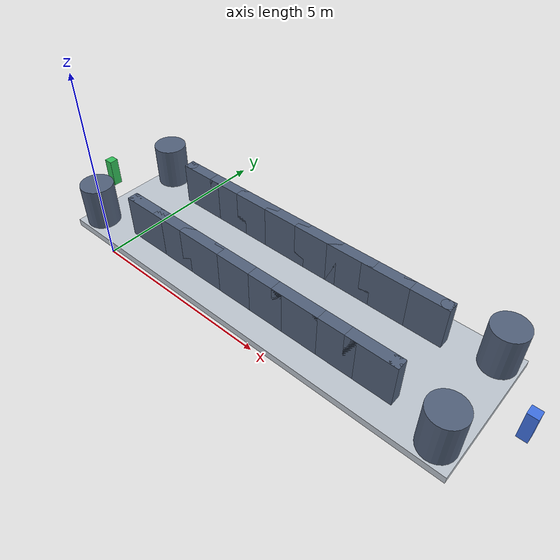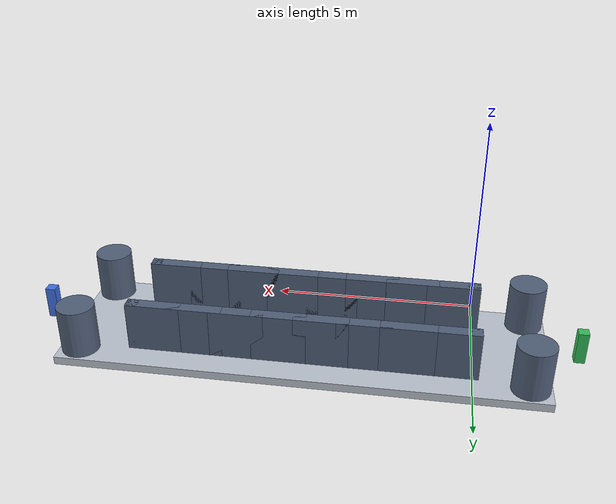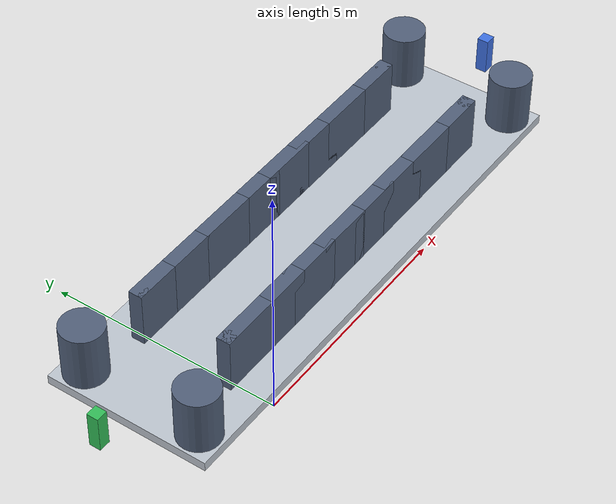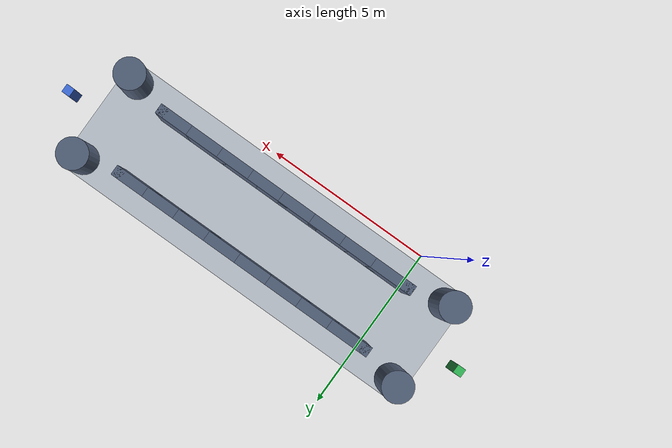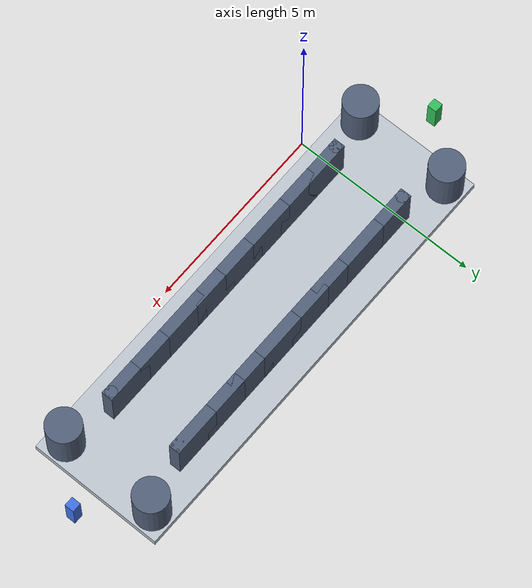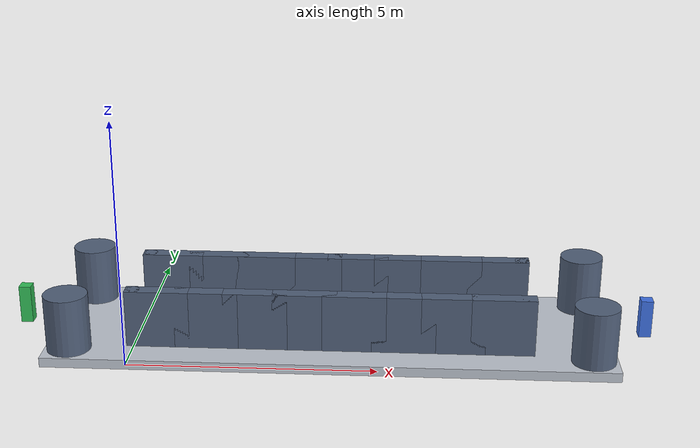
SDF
<?xml version="1.0"?>
<sdf version="1.6">
  <world name="straigh">
    <light type="directional" name="sun">
      <pose>0 0 10 0 0 0</pose>
      <diffuse>0.8 0.8 0.8 1</diffuse>
      <specular>0.2 0.2 0.2 1</specular>
      <direction>-0.5 0.5 -1</direction>
    </light>
    <scene>
      <ambient>0.3 0.3 0.3 1</ambient>
      <background>0.7 0.7 0.7 1</background>
      <shadows>true</shadows>
    </scene>
    <model name="ground_plane">
      <static>true</static>
      <pose>4.000 2.000 -0.1 0 0 0</pose>
      <link name="link">
        <collision name="collision">
          <geometry><box><size>11.60 3.60 0.2</size></box></geometry>
          <surface>
            <friction><ode><mu>1</mu><mu2>1</mu2></ode></friction>
          </surface>
        </collision>
        <visual name="visual">
          <geometry><box><size>11.60 3.60 0.2</size></box></geometry>
          <material>
            <ambient>0.75 0.78 0.82 1</ambient>
            <diffuse>0.75 0.78 0.82 1</diffuse>
          </material>
        </visual>
      </link>
    </model>
    <!-- ============ 迷宫墙体（深蓝灰；box 墙段 + 圆柱圆头） ============ -->
    <model name="wall_00">
      <static>true</static>
      <pose>0.500 3.000 0.600 0 0 0.0000</pose>
      <link name="link">
        <collision name="collision">
          <geometry><box><size>1.300 0.300 1.2</size></box></geometry>
        </collision>
        <visual name="visual">
          <geometry><box><size>1.300 0.300 1.2</size></box></geometry>
          <material><ambient>0.32 0.38 0.48 1</ambient><diffuse>0.32 0.38 0.48 1</diffuse></material>
        </visual>
      </link>
    </model>
    <model name="wall_01">
      <static>true</static>
      <pose>0.500 1.000 0.600 0 0 0.0000</pose>
      <link name="link">
        <collision name="collision">
          <geometry><box><size>1.300 0.300 1.2</size></box></geometry>
        </collision>
        <visual name="visual">
          <geometry><box><size>1.300 0.300 1.2</size></box></geometry>
          <material><ambient>0.32 0.38 0.48 1</ambient><diffuse>0.32 0.38 0.48 1</diffuse></material>
        </visual>
      </link>
    </model>
    <model name="wall_02">
      <static>true</static>
      <pose>1.500 3.000 0.600 0 0 0.0000</pose>
      <link name="link">
        <collision name="collision">
          <geometry><box><size>1.300 0.300 1.2</size></box></geometry>
        </collision>
        <visual name="visual">
          <geometry><box><size>1.300 0.300 1.2</size></box></geometry>
          <material><ambient>0.32 0.38 0.48 1</ambient><diffuse>0.32 0.38 0.48 1</diffuse></material>
        </visual>
      </link>
    </model>
    <model name="wall_03">
      <static>true</static>
      <pose>1.500 1.000 0.600 0 0 0.0000</pose>
      <link name="link">
        <collision name="collision">
          <geometry><box><size>1.300 0.300 1.2</size></box></geometry>
        </collision>
        <visual name="visual">
          <geometry><box><size>1.300 0.300 1.2</size></box></geometry>
          <material><ambient>0.32 0.38 0.48 1</ambient><diffuse>0.32 0.38 0.48 1</diffuse></material>
        </visual>
      </link>
    </model>
    <model name="wall_04">
      <static>true</static>
      <pose>2.500 3.000 0.600 0 0 0.0000</pose>
      <link name="link">
        <collision name="collision">
          <geometry><box><size>1.300 0.300 1.2</size></box></geometry>
        </collision>
        <visual name="visual">
          <geometry><box><size>1.300 0.300 1.2</size></box></geometry>
          <material><ambient>0.32 0.38 0.48 1</ambient><diffuse>0.32 0.38 0.48 1</diffuse></material>
        </visual>
      </link>
    </model>
    <model name="wall_05">
      <static>true</static>
      <pose>2.500 1.000 0.600 0 0 0.0000</pose>
      <link name="link">
        <collision name="collision">
          <geometry><box><size>1.300 0.300 1.2</size></box></geometry>
        </collision>
        <visual name="visual">
          <geometry><box><size>1.300 0.300 1.2</size></box></geometry>
          <material><ambient>0.32 0.38 0.48 1</ambient><diffuse>0.32 0.38 0.48 1</diffuse></material>
        </visual>
      </link>
    </model>
    <model name="wall_06">
      <static>true</static>
      <pose>3.500 3.000 0.600 0 0 0.0000</pose>
      <link name="link">
        <collision name="collision">
          <geometry><box><size>1.300 0.300 1.2</size></box></geometry>
        </collision>
        <visual name="visual">
          <geometry><box><size>1.300 0.300 1.2</size></box></geometry>
          <material><ambient>0.32 0.38 0.48 1</ambient><diffuse>0.32 0.38 0.48 1</diffuse></material>
        </visual>
      </link>
    </model>
    <model name="wall_07">
      <static>true</static>
      <pose>3.500 1.000 0.600 0 0 0.0000</pose>
      <link name="link">
        <collision name="collision">
          <geometry><box><size>1.300 0.300 1.2</size></box></geometry>
        </collision>
        <visual name="visual">
          <geometry><box><size>1.300 0.300 1.2</size></box></geometry>
          <material><ambient>0.32 0.38 0.48 1</ambient><diffuse>0.32 0.38 0.48 1</diffuse></material>
        </visual>
      </link>
    </model>
    <model name="wall_08">
      <static>true</static>
      <pose>4.500 3.000 0.600 0 0 0.0000</pose>
      <link name="link">
        <collision name="collision">
          <geometry><box><size>1.300 0.300 1.2</size></box></geometry>
        </collision>
        <visual name="visual">
          <geometry><box><size>1.300 0.300 1.2</size></box></geometry>
          <material><ambient>0.32 0.38 0.48 1</ambient><diffuse>0.32 0.38 0.48 1</diffuse></material>
        </visual>
      </link>
    </model>
    <model name="wall_09">
      <static>true</static>
      <pose>4.500 1.000 0.600 0 0 0.0000</pose>
      <link name="link">
        <collision name="collision">
          <geometry><box><size>1.300 0.300 1.2</size></box></geometry>
        </collision>
        <visual name="visual">
          <geometry><box><size>1.300 0.300 1.2</size></box></geometry>
          <material><ambient>0.32 0.38 0.48 1</ambient><diffuse>0.32 0.38 0.48 1</diffuse></material>
        </visual>
      </link>
    </model>
    <model name="wall_10">
      <static>true</static>
      <pose>5.500 3.000 0.600 0 0 0.0000</pose>
      <link name="link">
        <collision name="collision">
          <geometry><box><size>1.300 0.300 1.2</size></box></geometry>
        </collision>
        <visual name="visual">
          <geometry><box><size>1.300 0.300 1.2</size></box></geometry>
          <material><ambient>0.32 0.38 0.48 1</ambient><diffuse>0.32 0.38 0.48 1</diffuse></material>
        </visual>
      </link>
    </model>
    <model name="wall_11">
      <static>true</static>
      <pose>5.500 1.000 0.600 0 0 0.0000</pose>
      <link name="link">
        <collision name="collision">
          <geometry><box><size>1.300 0.300 1.2</size></box></geometry>
        </collision>
        <visual name="visual">
          <geometry><box><size>1.300 0.300 1.2</size></box></geometry>
          <material><ambient>0.32 0.38 0.48 1</ambient><diffuse>0.32 0.38 0.48 1</diffuse></material>
        </visual>
      </link>
    </model>
    <model name="wall_12">
      <static>true</static>
      <pose>6.500 3.000 0.600 0 0 0.0000</pose>
      <link name="link">
        <collision name="collision">
          <geometry><box><size>1.300 0.300 1.2</size></box></geometry>
        </collision>
        <visual name="visual">
          <geometry><box><size>1.300 0.300 1.2</size></box></geometry>
          <material><ambient>0.32 0.38 0.48 1</ambient><diffuse>0.32 0.38 0.48 1</diffuse></material>
        </visual>
      </link>
    </model>
    <model name="wall_13">
      <static>true</static>
      <pose>6.500 1.000 0.600 0 0 0.0000</pose>
      <link name="link">
        <collision name="collision">
          <geometry><box><size>1.300 0.300 1.2</size></box></geometry>
        </collision>
        <visual name="visual">
          <geometry><box><size>1.300 0.300 1.2</size></box></geometry>
          <material><ambient>0.32 0.38 0.48 1</ambient><diffuse>0.32 0.38 0.48 1</diffuse></material>
        </visual>
      </link>
    </model>
    <model name="wall_14">
      <static>true</static>
      <pose>7.500 3.000 0.600 0 0 0.0000</pose>
      <link name="link">
        <collision name="collision">
          <geometry><box><size>1.300 0.300 1.2</size></box></geometry>
        </collision>
        <visual name="visual">
          <geometry><box><size>1.300 0.300 1.2</size></box></geometry>
          <material><ambient>0.32 0.38 0.48 1</ambient><diffuse>0.32 0.38 0.48 1</diffuse></material>
        </visual>
      </link>
    </model>
    <model name="wall_15">
      <static>true</static>
      <pose>7.500 1.000 0.600 0 0 0.0000</pose>
      <link name="link">
        <collision name="collision">
          <geometry><box><size>1.300 0.300 1.2</size></box></geometry>
        </collision>
        <visual name="visual">
          <geometry><box><size>1.300 0.300 1.2</size></box></geometry>
          <material><ambient>0.32 0.38 0.48 1</ambient><diffuse>0.32 0.38 0.48 1</diffuse></material>
        </visual>
      </link>
    </model>
    <model name="pillar_00">
      <static>true</static>
      <pose>0.000 3.000 0.600 0 0 0</pose>
      <link name="link">
        <collision name="collision">
          <geometry><cylinder><radius>0.150</radius><length>1.2</length></cylinder></geometry>
        </collision>
        <visual name="visual">
          <geometry><cylinder><radius>0.150</radius><length>1.2</length></cylinder></geometry>
          <material><ambient>0.32 0.38 0.48 1</ambient><diffuse>0.32 0.38 0.48 1</diffuse></material>
        </visual>
      </link>
    </model>
    <model name="pillar_01">
      <static>true</static>
      <pose>8.000 3.000 0.600 0 0 0</pose>
      <link name="link">
        <collision name="collision">
          <geometry><cylinder><radius>0.150</radius><length>1.2</length></cylinder></geometry>
        </collision>
        <visual name="visual">
          <geometry><cylinder><radius>0.150</radius><length>1.2</length></cylinder></geometry>
          <material><ambient>0.32 0.38 0.48 1</ambient><diffuse>0.32 0.38 0.48 1</diffuse></material>
        </visual>
      </link>
    </model>
    <model name="pillar_02">
      <static>true</static>
      <pose>0.000 1.000 0.600 0 0 0</pose>
      <link name="link">
        <collision name="collision">
          <geometry><cylinder><radius>0.150</radius><length>1.2</length></cylinder></geometry>
        </collision>
        <visual name="visual">
          <geometry><cylinder><radius>0.150</radius><length>1.2</length></cylinder></geometry>
          <material><ambient>0.32 0.38 0.48 1</ambient><diffuse>0.32 0.38 0.48 1</diffuse></material>
        </visual>
      </link>
    </model>
    <model name="pillar_03">
      <static>true</static>
      <pose>8.000 1.000 0.600 0 0 0</pose>
      <link name="link">
        <collision name="collision">
          <geometry><cylinder><radius>0.150</radius><length>1.2</length></cylinder></geometry>
        </collision>
        <visual name="visual">
          <geometry><cylinder><radius>0.150</radius><length>1.2</length></cylinder></geometry>
          <material><ambient>0.32 0.38 0.48 1</ambient><diffuse>0.32 0.38 0.48 1</diffuse></material>
        </visual>
      </link>
    </model>
    <model name="pillar_04">
      <static>true</static>
      <pose>-1.300 0.700 0.600 0 0 0</pose>
      <link name="link">
        <collision name="collision">
          <geometry><cylinder><radius>0.450</radius><length>1.2</length></cylinder></geometry>
        </collision>
        <visual name="visual">
          <geometry><cylinder><radius>0.450</radius><length>1.2</length></cylinder></geometry>
          <material><ambient>0.32 0.38 0.48 1</ambient><diffuse>0.32 0.38 0.48 1</diffuse></material>
        </visual>
      </link>
    </model>
    <model name="pillar_05">
      <static>true</static>
      <pose>-1.300 3.300 0.600 0 0 0</pose>
      <link name="link">
        <collision name="collision">
          <geometry><cylinder><radius>0.450</radius><length>1.2</length></cylinder></geometry>
        </collision>
        <visual name="visual">
          <geometry><cylinder><radius>0.450</radius><length>1.2</length></cylinder></geometry>
          <material><ambient>0.32 0.38 0.48 1</ambient><diffuse>0.32 0.38 0.48 1</diffuse></material>
        </visual>
      </link>
    </model>
    <model name="pillar_06">
      <static>true</static>
      <pose>9.300 0.700 0.600 0 0 0</pose>
      <link name="link">
        <collision name="collision">
          <geometry><cylinder><radius>0.450</radius><length>1.2</length></cylinder></geometry>
        </collision>
        <visual name="visual">
          <geometry><cylinder><radius>0.450</radius><length>1.2</length></cylinder></geometry>
          <material><ambient>0.32 0.38 0.48 1</ambient><diffuse>0.32 0.38 0.48 1</diffuse></material>
        </visual>
      </link>
    </model>
    <model name="pillar_07">
      <static>true</static>
      <pose>9.300 3.300 0.600 0 0 0</pose>
      <link name="link">
        <collision name="collision">
          <geometry><cylinder><radius>0.450</radius><length>1.2</length></cylinder></geometry>
        </collision>
        <visual name="visual">
          <geometry><cylinder><radius>0.450</radius><length>1.2</length></cylinder></geometry>
          <material><ambient>0.32 0.38 0.48 1</ambient><diffuse>0.32 0.38 0.48 1</diffuse></material>
        </visual>
      </link>
    </model>
    <!-- ============ 起终点标记柱 ============ -->
    <model name="marker_entry">
      <static>true</static>
      <pose>-2.500 2.000 0.4 0 0 0</pose>
      <link name="link">
        <collision name="collision">
          <geometry><box><size>0.25 0.25 0.8</size></box></geometry>
        </collision>
        <visual name="visual">
          <geometry><box><size>0.25 0.25 0.8</size></box></geometry>
          <material><ambient>0.2 0.75 0.35 1</ambient><diffuse>0.2 0.75 0.35 1</diffuse></material>
        </visual>
      </link>
    </model>
    <model name="marker_exit">
      <static>true</static>
      <pose>10.500 2.000 0.4 0 0 0</pose>
      <link name="link">
        <collision name="collision">
          <geometry><box><size>0.25 0.25 0.8</size></box></geometry>
        </collision>
        <visual name="visual">
          <geometry><box><size>0.25 0.25 0.8</size></box></geometry>
          <material><ambient>0.25 0.45 0.9 1</ambient><diffuse>0.25 0.45 0.9 1</diffuse></material>
        </visual>
      </link>
    </model>
  </world>
</sdf>
